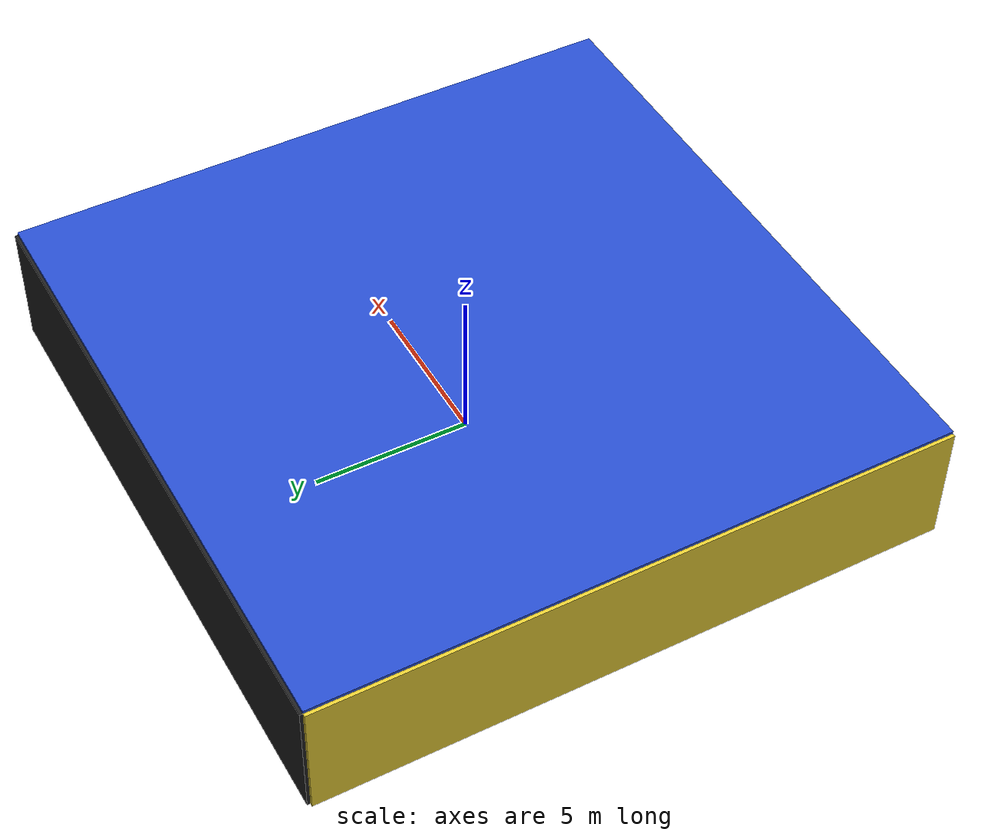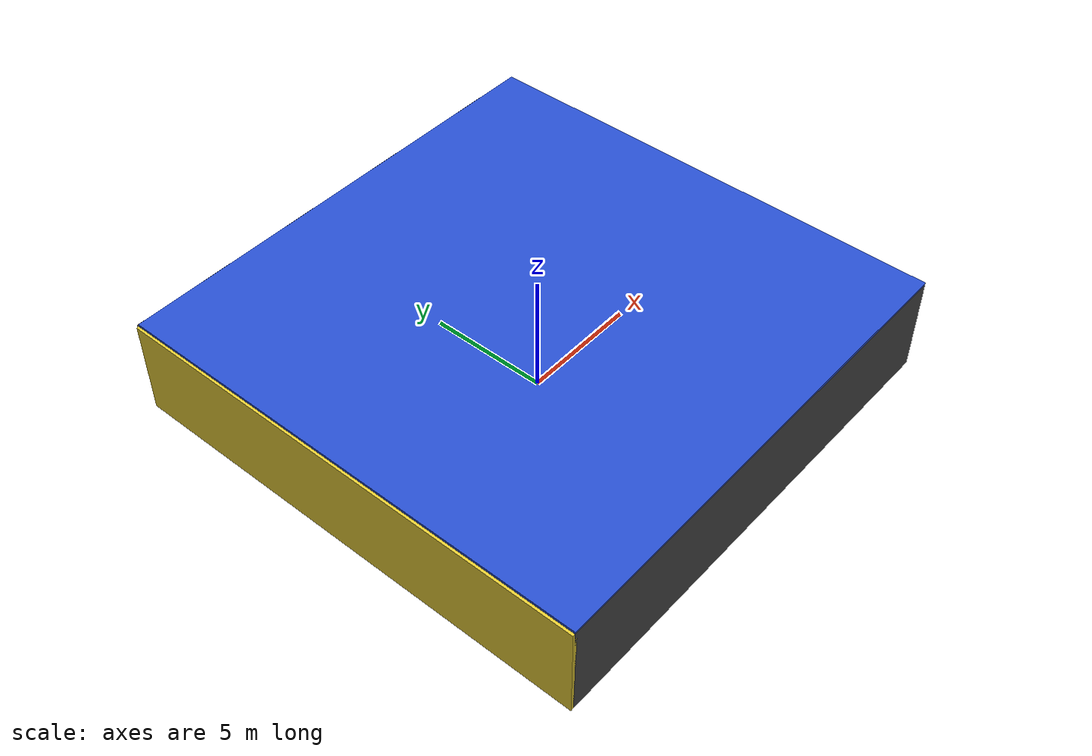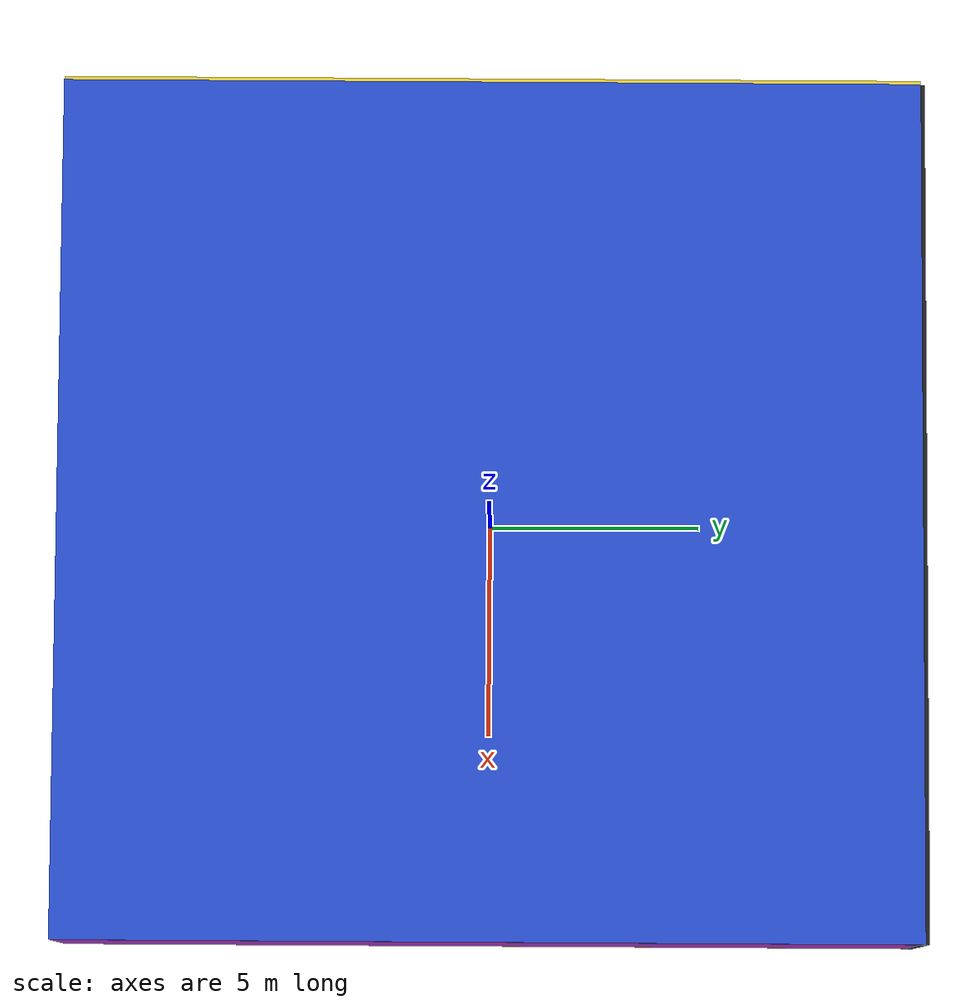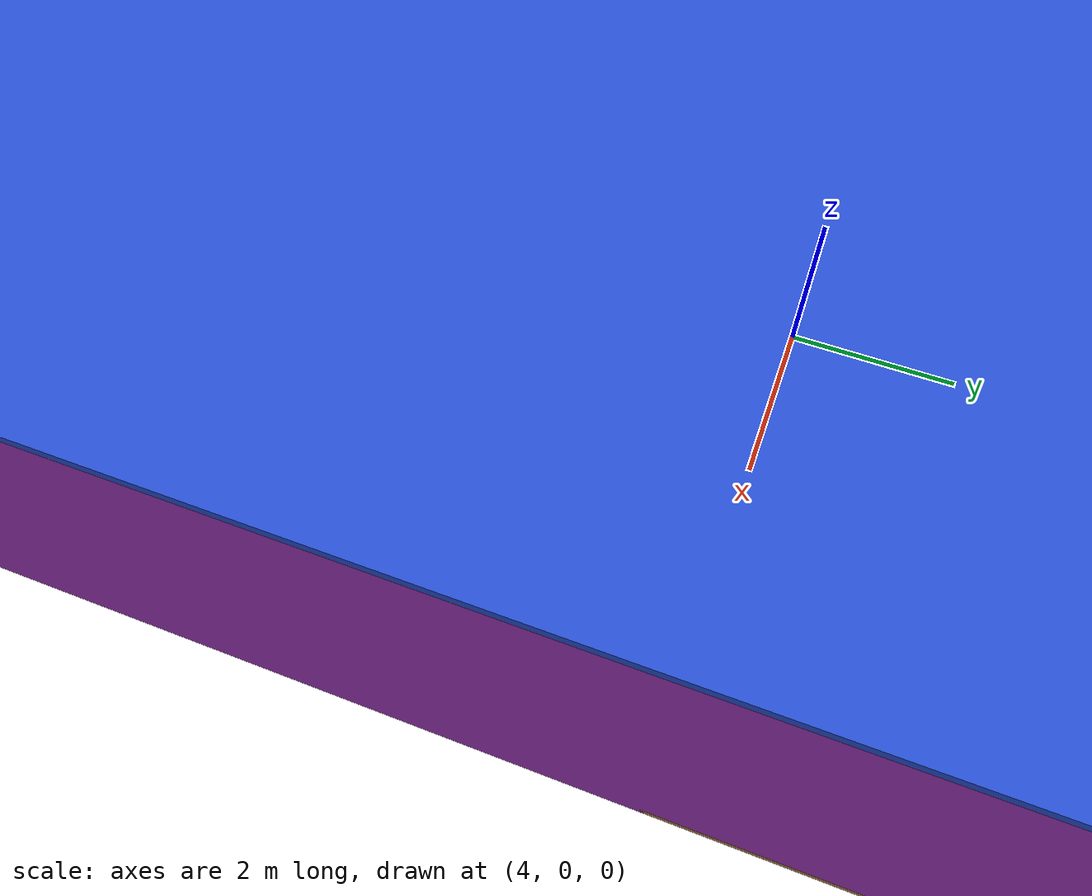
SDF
<sdf version="1.4">
 <world name="default">
  <physics type="ode">
   <max_step_size>0.001</max_step_size>
   <real_time_factor>1</real_time_factor>
   <real_time_update_rate>1000</real_time_update_rate>
   <gravity>0 0 -9.8</gravity>
  </physics>
  <scene><ambient>0.4 0.4 0.4 1</ambient><background>0.7 0.7 0.7 1</background><shadows>1</shadows></scene>
  <model name="Surrounding">
   <static>1</static>
   <link name="Ceiling">
    <collision name="Ceiling_Collision"><geometry><box><size>20 20 0.1</size></box></geometry></collision>
    <visual name="Ceiling_Visual">
     <geometry><box><size>20 20 0.1</size></box></geometry>
     <material>
      <script><uri>file://media/materials/scripts/gazebo.material</uri><name>Gazebo/BlueLaser</name></script>
     </material>
    </visual>
    <pose>0 0 4.05 0 0 0</pose>
   </link>
   <link name="Wall_South">
    <collision name="Wall_South_Collision">
     <geometry><box><size>20 0 4</size></box></geometry>
     <pose>0 0 2 0 -0 0</pose>
    </collision>
    <visual name="Wall_South_Visual">
     <pose>0 0 2 0 -0 0</pose>
     <geometry><box><size>20 0 4</size></box></geometry>
     <material>
      <script><uri>file://media/materials/scripts/gazebo.material</uri><name>Gazebo/Road</name></script>
     </material>
    </visual>
    <velocity_decay><linear>0</linear><angular>0</angular></velocity_decay>
    <pose>0 -10 0 0 -0 0</pose>
   </link>
   <link name="Wall_East">
    <collision name="Wall_21_Collision">
     <geometry><box><size>20 0 4</size></box></geometry>
     <pose>0 0 2 0 -0 0</pose>
    </collision>
    <visual name="Wall_21_Visual">
     <pose>0 0 2 0 -0 0</pose>
     <geometry><box><size>20 0 4</size></box></geometry>
     <material>
      <script><uri>file://media/materials/scripts/gazebo.material</uri><name>Gazebo/Purple</name></script>
     </material>
    </visual>
    <velocity_decay><linear>0</linear><angular>0</angular></velocity_decay>
    <pose>10 0 0 0 -0 1.5708</pose>
   </link>
   <link name="Wall_North">
    <collision name="Wall_22_Collision">
     <geometry><box><size>20 0.2 4</size></box></geometry>
     <pose>0 0 2 0 -0 0</pose>
    </collision>
    <visual name="Wall_22_Visual">
     <pose>0 0 2 0 -0 0</pose>
     <geometry><box><size>20 0.2 4</size></box></geometry>
     <material>
      <script><uri>file://media/materials/scripts/gazebo.material</uri><name>Gazebo/FlatBlack</name></script>
     </material>
    </visual>
    <velocity_decay><linear>0</linear><angular>0</angular></velocity_decay>
    <pose>0 10 0 0 -0 0</pose>
   </link>
   <link name="Wall_West">
    <collision name="Wall_23_Collision">
     <geometry><box><size>20 0.2 4</size></box></geometry>
     <pose>0 0 2 0 -0 0</pose>
    </collision>
    <visual name="Wall_23_Visual">
     <pose>0 0 2 0 -0 0</pose>
     <geometry><box><size>20 0.2 4</size></box></geometry>
     <material>
      <script><uri>file://media/materials/scripts/gazebo.material</uri><name>Gazebo/ZincYellow</name></script>
     </material>
    </visual>
    <velocity_decay><linear>0</linear><angular>0</angular></velocity_decay>
    <pose>-10 0 0 0 0 -1.5708</pose>
   </link>
   <link name="Ground_link">
    <collision name="collision">
     <pose>0 0 .05 0 -0 0</pose>
     <geometry><box><size>20 20 0.1</size></box></geometry>
    </collision>
    <visual name="visual">
     <pose>0 0 .05 0 -0 0</pose>
     <geometry><box><size>20 20 0.1</size></box></geometry>
     <material>
      <script><uri>file://media/materials/scripts/gazebo.material</uri><name>Gazebo/WoodPallet</name></script>
     </material>
    </visual>
   </link>
   <static>1</static>
  </model>
  <spherical_coordinates>
   <surface_model>EARTH_WGS84</surface_model>
   <latitude_deg>0</latitude_deg>
   <longitude_deg>0</longitude_deg>
   <elevation>0</elevation>
   <heading_deg>0</heading_deg>
  </spherical_coordinates>
  <light name="lightball_0" type="diffuse">
   <diffuse>0.8 0.8 0.8 1</diffuse>
   <specular>0.2 0.2 0.2 1</specular>
   <attenuation>
    <range>100</range>
    <constant>0.7</constant>
    <linear>0.01</linear>
    <quadratic>0.001</quadratic>
   </attenuation>
   <direction>-0.5 0.1 -0.9</direction>
   <pose>6.46003314082 7.35952402969 0.682203830528 0 0 0</pose>
  </light>
  <light name="lightball_1" type="diffuse">
   <diffuse>0.8 0.8 0.8 1</diffuse>
   <specular>0.2 0.2 0.2 1</specular>
   <attenuation>
    <range>100</range>
    <constant>0.7</constant>
    <linear>0.01</linear>
    <quadratic>0.001</quadratic>
   </attenuation>
   <direction>-0.5 0.1 -0.9</direction>
   <pose>-5.67051406431 7.83809255098 2.49621001814 0 0 0</pose>
  </light>
  <light name="lightball_2" type="diffuse">
   <diffuse>0.8 0.8 0.8 1</diffuse>
   <specular>0.2 0.2 0.2 1</specular>
   <attenuation>
    <range>100</range>
    <constant>0.7</constant>
    <linear>0.01</linear>
    <quadratic>0.001</quadratic>
   </attenuation>
   <direction>-0.5 0.1 -0.9</direction>
   <pose>-1.49587524801 -7.326761589 1.5130667199 0 0 0</pose>
  </light>
  <light name="lightball_3" type="diffuse">
   <diffuse>0.8 0.8 0.8 1</diffuse>
   <specular>0.2 0.2 0.2 1</specular>
   <attenuation>
    <range>100</range>
    <constant>0.7</constant>
    <linear>0.01</linear>
    <quadratic>0.001</quadratic>
   </attenuation>
   <direction>-0.5 0.1 -0.9</direction>
   <pose>6.07119833468 -3.18807430864 2.70917912997 0 0 0</pose>
  </light>
  <light name="lightball_4" type="diffuse">
   <diffuse>0.8 0.8 0.8 1</diffuse>
   <specular>0.2 0.2 0.2 1</specular>
   <attenuation>
    <range>100</range>
    <constant>0.7</constant>
    <linear>0.01</linear>
    <quadratic>0.001</quadratic>
   </attenuation>
   <direction>-0.5 0.1 -0.9</direction>
   <pose>4.14601994105 -0.0782638339407 0.606283508718 0 0 0</pose>
  </light>
  <light name="lightball_5" type="diffuse">
   <diffuse>0.8 0.8 0.8 1</diffuse>
   <specular>0.2 0.2 0.2 1</specular>
   <attenuation>
    <range>100</range>
    <constant>0.7</constant>
    <linear>0.01</linear>
    <quadratic>0.001</quadratic>
   </attenuation>
   <direction>-0.5 0.1 -0.9</direction>
   <pose>5.8893089647 9.35062458751 2.29793076165 0 0 0</pose>
  </light>
  <light name="lightball_6" type="diffuse">
   <diffuse>0.8 0.8 0.8 1</diffuse>
   <specular>0.2 0.2 0.2 1</specular>
   <attenuation>
    <range>100</range>
    <constant>0.7</constant>
    <linear>0.01</linear>
    <quadratic>0.001</quadratic>
   </attenuation>
   <direction>-0.5 0.1 -0.9</direction>
   <pose>-8.17521138793 0.793378272396 1.16114344804 0 0 0</pose>
  </light>
  <light name="lightball_7" type="diffuse">
   <diffuse>0.8 0.8 0.8 1</diffuse>
   <specular>0.2 0.2 0.2 1</specular>
   <attenuation>
    <range>100</range>
    <constant>0.7</constant>
    <linear>0.01</linear>
    <quadratic>0.001</quadratic>
   </attenuation>
   <direction>-0.5 0.1 -0.9</direction>
   <pose>9.82119604934 -6.46562352897 3.08161289072 0 0 0</pose>
  </light>
  <light name="lightball_8" type="diffuse">
   <diffuse>0.8 0.8 0.8 1</diffuse>
   <specular>0.2 0.2 0.2 1</specular>
   <attenuation>
    <range>100</range>
    <constant>0.7</constant>
    <linear>0.01</linear>
    <quadratic>0.001</quadratic>
   </attenuation>
   <direction>-0.5 0.1 -0.9</direction>
   <pose>-9.84759225382 0.562889355664 3.21380321474 0 0 0</pose>
  </light>
  <light name="lightball_9" type="diffuse">
   <diffuse>0.8 0.8 0.8 1</diffuse>
   <specular>0.2 0.2 0.2 1</specular>
   <attenuation>
    <range>100</range>
    <constant>0.7</constant>
    <linear>0.01</linear>
    <quadratic>0.001</quadratic>
   </attenuation>
   <direction>-0.5 0.1 -0.9</direction>
   <pose>2.44354444176 5.49285916796 1.76106244727 0 0 0</pose>
  </light>
  <light name="lightball_10" type="diffuse">
   <diffuse>0.8 0.8 0.8 1</diffuse>
   <specular>0.2 0.2 0.2 1</specular>
   <attenuation>
    <range>100</range>
    <constant>0.7</constant>
    <linear>0.01</linear>
    <quadratic>0.001</quadratic>
   </attenuation>
   <direction>-0.5 0.1 -0.9</direction>
   <pose>-8.47969993622 8.79682857066 1.83747878434 0 0 0</pose>
  </light>
  <include><uri>model://cabinet</uri><pose>-7.25900512246 -8.0927002004 0 0 0 2.54482462497</pose></include>
  <include>
   <uri>model://construction_cone</uri>
   <pose>2.02666701277 -1.19249539255 0 0 0 0.722787350317</pose>
  </include>
  <include>
   <uri>model://construction_cone</uri>
   <pose>0.967136757238 4.31158754519 0 0 0 1.19003468322</pose>
  </include>
  <include>
   <uri>model://construction_cone</uri>
   <pose>7.58371769433 -8.02358243269 0 0 0 1.74738806236</pose>
  </include>
  <include>
   <uri>model://robocup_3Dsim_goal</uri>
   <pose>7.70644363085 -1.95055492316 0 0 0 2.28114284788</pose>
  </include>
 </world>
</sdf>

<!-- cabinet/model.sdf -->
<sdf version="1.5">
  <model name="cabinet">
    <static>true</static>
    <link name="cabinet_bottom_plate">
      <inertial>
        <pose>0 0 -1 0 0 0</pose>
        <inertia>
          <ixx>2.050000</ixx>
          <ixy>0</ixy>
          <ixz>0</ixz>
          <iyy>2.050000</iyy>
          <iyz>0</iyz>
          <izz>2.050000</izz>
        </inertia>
        <mass>25.000000</mass>
      </inertial>
      <collision name="cabinet_bottom_plate_geom">
        <pose>0 0 0.010000 0 0 0</pose>
        <geometry>
          <box>
            <size>0.450000 0.450000 0.020000</size>
          </box>
        </geometry>
      </collision>
      <visual name="cabinet_bottom_plate_geom_visual">
        <pose>0 0 0.010000 0 0 0</pose>
        <geometry>
          <box>
            <size>0.450000 0.450000 0.020000</size>
          </box>
        </geometry>
        <material>
          <script>
            <uri>model://media/materials/scripts/gazebo.material</uri>
            <name>Gazebo/Wood</name>
          </script>
        </material>
      </visual>
      <collision name="cabinet_bottom_plate_geom_cabinet_back_plate">
        <pose>0.235000 0 0.510000 0 0 0</pose>
        <geometry>
          <box>
            <size>0.020000 0.450000 1.020000</size>
          </box>
        </geometry>
      </collision>
      <visual name="cabinet_bottom_plate_geom_cabinet_back_plate_visual">
        <pose>0.235000 0 0.510000 0 0 0</pose>
        <geometry>
          <box>
            <size>0.020000 0.450000 1.020000</size>
          </box>
        </geometry>
        <material>
          <script>
            <uri>model://media/materials/scripts/gazebo.material</uri>
            <name>Gazebo/Wood</name>
          </script>
        </material>
      </visual>
      <collision name="cabinet_bottom_plate_geom_cabinet_left_plate">
        <pose>0 0.235000 0.510000 0 0 0</pose>
        <geometry>
          <box>
            <size>0.450000 0.020000 1.020000</size>
          </box>
        </geometry>
      </collision>
      <visual name="cabinet_bottom_plate_geom_cabinet_left_plate_visual">
        <pose>0 0.235000 0.510000 0 0 0</pose>
        <geometry>
          <box>
            <size>0.450000 0.020000 1.020000</size>
          </box>
        </geometry>
        <material>
          <script>
            <uri>model://media/materials/scripts/gazebo.material</uri>
            <name>Gazebo/Wood</name>
          </script>
        </material>
      </visual>
      <collision name="cabinet_bottom_plate_geom_cabinet_middle_plate">
        <pose>0 0 0.510000 0 0 0</pose>
        <geometry>
          <box>
            <size>0.450000 0.450000 0.020000</size>
          </box>
        </geometry>
      </collision>
      <visual name="cabinet_bottom_plate_geom_cabinet_middle_plate_visual">
        <pose>0 0 0.510000 0 0 0</pose>
        <geometry>
          <box>
            <size>0.450000 0.450000 0.020000</size>
          </box>
        </geometry>
        <material>
          <script>
            <uri>model://media/materials/scripts/gazebo.material</uri>
            <name>Gazebo/Wood</name>
          </script>
        </material>
      </visual>
      <collision name="cabinet_bottom_plate_geom_cabinet_right_plate">
        <pose>0 -0.235000 0.510000 0 0 0</pose>
        <geometry>
          <box>
            <size>0.450000 0.020000 1.020000</size>
          </box>
        </geometry>
      </collision>
      <visual name="cabinet_bottom_plate_geom_cabinet_right_plate_visual">
        <pose>0 -0.235000 0.510000 0 0 0</pose>
        <geometry>
          <box>
            <size>0.450000 0.020000 1.020000</size>
          </box>
        </geometry>
        <material>
          <script>
            <uri>model://media/materials/scripts/gazebo.material</uri>
            <name>Gazebo/Wood</name>
          </script>
        </material>
      </visual>
      <collision name="cabinet_bottom_plate_geom_cabinet_top_plate">
        <pose>0 0 1.010000 0 0 0</pose>
        <geometry>
          <box>
            <size>0.450000 0.450000 0.020000</size>
          </box>
        </geometry>
      </collision>
      <visual name="cabinet_bottom_plate_geom_cabinet_top_plate_visual">
        <pose>0 0 1.010000 0 0 0</pose>
        <geometry>
          <box>
            <size>0.450000 0.450000 0.020000</size>
          </box>
        </geometry>
        <material>
          <script>
            <uri>model://media/materials/scripts/gazebo.material</uri>
            <name>Gazebo/Wood</name>
          </script>
        </material>
      </visual>
    </link>
  </model>
</sdf>

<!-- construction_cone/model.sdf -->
<sdf version="1.5">
  <model name="Construction Cone">
    <link name="link">
      <collision name="collision">
        <geometry>
          <mesh>
            <scale>10 10 10</scale>
            <uri>file://isr-testbed/construction_cone/meshes/construction_cone.dae</uri>
          </mesh>
        </geometry>
      </collision>
      <visual name="visual">
        <geometry>
          <mesh>
            <scale>10 10 10</scale>
            <uri>file://isr-testbed/construction_cone/meshes/construction_cone.dae</uri>
          </mesh>
        </geometry>
      </visual>
    </link>
  </model>
</sdf>

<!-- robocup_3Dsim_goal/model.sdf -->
<sdf version="1.5">
  <model name="robocup_3d_goal">
    <static>true</static>
    <link name="left_post">
      <pose>0 1.05 0.45 0 0 0</pose>
      <collision name="collision">
        <geometry>
          <cylinder>
            <radius>0.05</radius>
            <length>0.9</length>
          </cylinder>
        </geometry>
      </collision>
      <visual name="visual">
        <geometry>
          <cylinder>
            <radius>0.05</radius>
            <length>0.9</length>
          </cylinder>
        </geometry>
        <material>
          <script>
            <uri>file://media/materials/scripts/gazebo.material</uri>
            <name>Gazebo/ZincYellow</name>
          </script>
        </material>
      </visual>
    </link>
    <link name="left_support_horiz_lower">
      <pose>0.30 1.05 0.01 0 0 0</pose>
      <collision name="collision">
        <geometry>
          <box>
            <size>0.50 0.02 0.02</size>
          </box>
        </geometry>
      </collision>
      <visual name="visual">
        <geometry>
          <box>
            <size>0.50 0.02 0.02</size>
          </box>
        </geometry>
        <material>
          <script>
            <uri>file://media/materials/scripts/gazebo.material</uri>
            <name>Gazebo/White</name>
          </script>
        </material>
      </visual>
    </link>
    <link name="left_support_horiz_upper">
      <pose>0.30 1.05 0.79 0 0 0</pose>
      <collision name="collision">
        <geometry>
          <box>
            <size>0.50 0.02 0.02</size>
          </box>
        </geometry>
      </collision>
      <visual name="visual">
        <geometry>
          <box>
            <size>0.50 0.02 0.02</size>
          </box>
        </geometry>
        <material>
          <script>
            <uri>file://media/materials/scripts/gazebo.material</uri>
            <name>Gazebo/White</name>
          </script>
        </material>
      </visual>
    </link>
    <link name="left_support_vertical">
      <pose>0.56 1.05 0.4 0 1.5708 0</pose>
      <collision name="collision">
        <geometry>
          <box>
            <size>0.80 0.02 0.02</size>
          </box>
        </geometry>
      </collision>
      <visual name="visual">
        <geometry>
          <box>
            <size>0.80 0.02 0.02</size>
          </box>
        </geometry>
        <material>
          <script>
            <uri>file://media/materials/scripts/gazebo.material</uri>
            <name>Gazebo/White</name>
          </script>
        </material>
      </visual>
    </link>
    <link name="right_support_horiz_lower">
      <pose>0.30 -1.05 0.01 0 0 0</pose>
      <collision name="collision">
        <geometry>
          <box>
            <size>0.50 0.02 0.02</size>
          </box>
        </geometry>
      </collision>
      <visual name="visual">
        <geometry>
          <box>
            <size>0.50 0.02 0.02</size>
          </box>
        </geometry>
        <material>
          <script>
            <uri>file://media/materials/scripts/gazebo.material</uri>
            <name>Gazebo/White</name>
          </script>
        </material>
      </visual>
    </link>
    <link name="right_support_horiz_upper">
      <pose>0.30 -1.05 0.79 0 0 0</pose>
      <collision name="collision">
        <geometry>
          <box>
            <size>0.50 0.02 0.02</size>
          </box>
        </geometry>
      </collision>
      <visual name="visual">
        <geometry>
          <box>
            <size>0.50 0.02 0.02</size>
          </box>
        </geometry>
        <material>
          <script>
            <uri>file://media/materials/scripts/gazebo.material</uri>
            <name>Gazebo/White</name>
          </script>
        </material>
      </visual>
    </link>
    <link name="right_support_vertical">
      <pose>0.56 -1.05 0.4 0 1.5708 0</pose>
      <collision name="collision">
        <geometry>
          <box>
            <size>0.80 0.02 0.02</size>
          </box>
        </geometry>
      </collision>
      <visual name="visual">
        <geometry>
          <box>
            <size>0.80 0.02 0.02</size>
          </box>
        </geometry>
        <material>
          <script>
            <uri>file://media/materials/scripts/gazebo.material</uri>
            <name>Gazebo/White</name>
          </script>
        </material>
      </visual>
    </link>
    <link name="center_support_horiz_lower">
      <pose>0.56 0 0.01 0 1.5708 0</pose>
      <collision name="collision">
        <geometry>
          <box>
            <size>0.02 2.08 0.02</size>
          </box>
        </geometry>
      </collision>
      <visual name="visual">
        <geometry>
          <box>
            <size>0.02 2.08 0.02</size>
          </box>
        </geometry>
        <material>
          <script>
            <uri>file://media/materials/scripts/gazebo.material</uri>
            <name>Gazebo/White</name>
          </script>
        </material>
      </visual>
    </link>
    <link name="center_support_horiz_upper">
      <pose>0.56 0 0.79 0 1.5708 0</pose>
      <collision name="collision">
        <geometry>
          <box>
            <size>0.02 2.08 0.02</size>
          </box>
        </geometry>
      </collision>
      <visual name="visual">
        <geometry>
          <box>
            <size>0.02 2.08 0.02</size>
          </box>
        </geometry>
        <material>
          <script>
            <uri>file://media/materials/scripts/gazebo.material</uri>
            <name>Gazebo/White</name>
          </script>
        </material>
      </visual>
    </link>
    <link name="right_post">
      <pose>0 -1.05 0.45 0 0 0</pose>
      <collision name="collision">
        <geometry>
          <cylinder>
            <radius>0.05</radius>
            <length>0.9</length>
          </cylinder>
        </geometry>
      </collision>
      <visual name="visual">
        <geometry>
          <cylinder>
            <radius>0.05</radius>
            <length>0.9</length>
          </cylinder>
        </geometry>
        <material>
          <script>
            <uri>file://media/materials/scripts/gazebo.material</uri>
            <name>Gazebo/ZincYellow</name>
          </script>
        </material>
      </visual>
    </link>
    <link name="crossbar">
      <pose>0 0 0.85 1.57 1.57 0</pose>
      <collision name="collision">
        <geometry>
          <cylinder>
            <radius>0.05</radius>
            <length>2.0</length>
          </cylinder>
        </geometry>
      </collision>
      <visual name="visual">
        <geometry>
          <cylinder>
            <radius>0.05</radius>
            <length>2.0</length>
          </cylinder>
        </geometry>
        <material>
          <script>
            <uri>file://media/materials/scripts/gazebo.material</uri>
            <name>Gazebo/ZincYellow</name>
          </script>
        </material>
      </visual>
    </link>
    <link name="center_net">
      <pose>0.56 0 0.40 0 0 0</pose>
      <collision name="collision">
        <geometry>
          <box>
            <size>0.01 2.1 0.80</size>
          </box>
        </geometry>
      </collision>
      <visual name="visual">
        <geometry>
          <box>
            <size>0.01 2.1 0.80</size>
          </box>
        </geometry>
        <material>
          <script>
            <uri>model://../model_source/models/robocup09_spl_field/materials/scripts/</uri>
            <uri>model://../model_source/models/robocup09_spl_field/materials/textures/</uri>
            <name>RoboCup/Net</name>
          </script>
        </material>
      </visual>
    </link>
    <link name="left_net">
      <pose>0.30 1.05 0.40 0 0 0</pose>
      <collision name="collision">
        <geometry>
          <box>
            <size>0.50 0.01 0.76</size>
          </box>
        </geometry>
      </collision>
      <visual name="visual">
        <geometry>
          <box>
            <size>0.50 0.01 0.76</size>
          </box>
        </geometry>
        <material>
          <script>
            <uri>model://../model_source/models/robocup09_spl_field/materials/scripts/</uri>
            <uri>model://../model_source/models/robocup09_spl_field/materials/textures/</uri>
            <name>RoboCup/Net</name>
          </script>
        </material>
      </visual>
    </link>
    <link name="right_net">
      <pose>0.30 -1.05 0.40 0 0 0</pose>
      <collision name="collision">
        <geometry>
          <box>
            <size>0.50 0.01 0.76</size>
          </box>
        </geometry>
      </collision>
      <visual name="visual">
        <geometry>
          <box>
            <size>0.50 0.01 0.76</size>
          </box>
        </geometry>
        <material>
          <script>
            <uri>model://../model_source/models/robocup09_spl_field/materials/scripts/</uri>
            <uri>model://../model_source/models/robocup09_spl_field/materials/textures/</uri>
            <name>RoboCup/Net</name>
          </script>
        </material>
      </visual>
    </link>
  </model>
</sdf>
